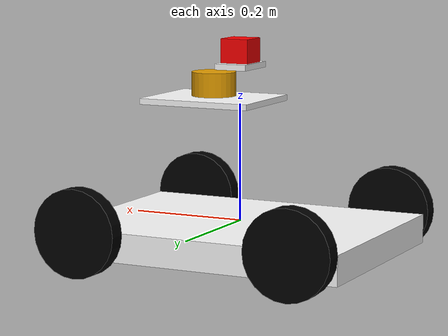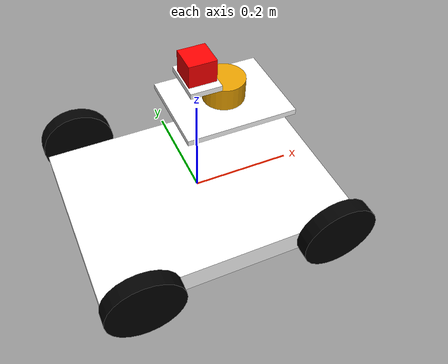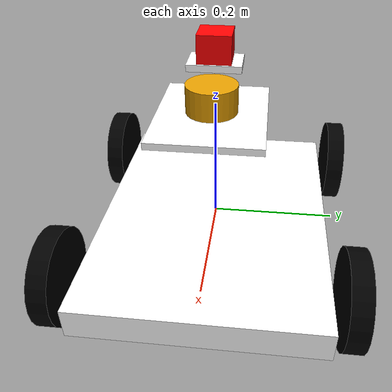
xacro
<?xml version="1.0"?>

<robot xmlns:xacro="http://www.ros.org/wiki/xacro"
 	xmlns:sensor="http://playerstage.sourceforge.net/gazebo/xmlschema/#sensor"
    	xmlns:controller="http://playerstage.sourceforge.net/gazebo/xmlschema/#controller"
    	xmlns:interface="http://playerstage.sourceforge.net/gazebo/xmlschema/#interface"
	name="robot_car">

	<xacro:property name="length_wheel" value="0.03" />
	<xacro:property name="radius_wheel" value="0.075" />
	<xacro:property name="rplidar_link" value="0.05" />
	<!--xacro:include filename="$(find myrobot)/robot_description/urdf/robot.gazebo" /-->
	<xacro:macro name="default_inertial" params="mass">
               <inertial>
                       <mass value="${mass}" />
                       <inertia ixx="1.0" ixy="0.0" ixz="0.0"
                                iyy="1.0" iyz="0.0"
                                izz="1.0" />
               </inertial>
	</xacro:macro>

	<link name="base_link">
   		<visual>
			<geometry>
      				<box size="0.52 .38 0.05"/>
     			</geometry>
			<origin rpy="0 0 0" xyz="0 0 -0.025"/>
			<material name="white">
				<color rgba="1 1 1 1"/>
			</material>
   		</visual>
		<collision>
			<geometry>
       				<box size="0.52 .38 0.05"/>
			</geometry>
		</collision>
		<xacro:default_inertial mass="5"/>
 	</link>
		<gazebo reference="base_link">
			<turnGravityOff>false</turnGravityOff>
		</gazebo>

	<link name="layer1">
   		<visual>
			<geometry>
      				<box size="0.2 .16 0.01"/>
     			</geometry>
			<origin rpy="0 0 0" xyz="0 0 0.005"/>
			<material name="white">
				<color rgba="1 1 1 1"/>
			</material>
   		</visual>
		<collision>
			<geometry>
       				<box size="0.2 .16 0.01"/>
			</geometry>
		</collision>
		<xacro:default_inertial mass="2"/>
 	</link>

     	<link name="layer2">
   		<visual>
			<geometry>
      				<box size="0.056 .08 0.01"/>
     			</geometry>
			<origin rpy="0 0 0" xyz="0 0 0.005"/>
			<material name="white">
				<color rgba="1 1 1 1"/>
			</material>
   		</visual>
		<collision>
			<geometry>
       				<box size="0.056 .08 0.01"/>
			</geometry>
		</collision>
		<xacro:default_inertial mass="1"/>
 	</link>

<link name="wheel_1">
   		<visual>
     			<geometry>
       				<cylinder length="${length_wheel}" radius="${radius_wheel}"/>
     			</geometry>
			<origin rpy="0 0 0" xyz="0 0 0"/>
   			<material name="black">
				<color rgba="0 0 0 1"/>
			</material>
		</visual>
		<collision>
			<geometry>
       				<cylinder length="${length_wheel}" radius="${radius_wheel}"/>
			</geometry>
		</collision>
		<xacro:default_inertial mass="1"/>
 	</link>

 	<link name="wheel_2">
   		<visual>
     			<geometry>
       				<cylinder length="${length_wheel}" radius="${radius_wheel}"/>
     			</geometry>
			<origin rpy="0 0 0" xyz="0 0 0"/>
   			<material name="black"/>
   		</visual>
		<collision>
			<geometry>
       				<cylinder length="${length_wheel}" radius="${radius_wheel}"/>
			</geometry>
		</collision>
		<xacro:default_inertial mass="1"/>

 	</link>

 	<link name="wheel_3">
   		<visual>
     			<geometry>
       				<cylinder length="${length_wheel}" radius="${radius_wheel}"/>
     			</geometry>

			<origin rpy="0 0 0" xyz="0 0 0"/>
   			<material name="black"/>
   		</visual>
		<collision>
			<geometry>
       				<cylinder length="${length_wheel}" radius="${radius_wheel}"/>
			</geometry>
		</collision>
		<xacro:default_inertial mass="1"/>
 	</link>

 	<link name="wheel_4">
   		<visual>
     			<geometry>
       				<cylinder length="${length_wheel}" radius="${radius_wheel}"/>
     			</geometry>
			<origin rpy="0 0 0" xyz="0 0 0" />
   			<material name="black"/>
   		</visual>
		<collision>
			<geometry>
       				<cylinder length="${length_wheel}" radius="${radius_wheel}"/>
			</geometry>
		</collision>
		<xacro:default_inertial mass="1"/>

 	</link>

  <joint name="layer1" type="fixed">
    <axis xyz="0 1 0" />
    <origin xyz="0.05 0 0.2" rpy="0 0 0"/>
    <parent link="base_link"/>
    <child link="layer1"/>
  </joint>

    <joint name="layer2" type="fixed">
    <axis xyz="0 1 0" />
    <origin xyz="0.0 0 0.26" rpy="0 0 0"/>
    <parent link="base_link"/>
    <child link="layer2"/>
  </joint>

 <joint name="base_to_wheel1" type="continuous">
   <parent link="base_link"/>
   <child link="wheel_1"/>
   <origin rpy="-1.5707 0 0" xyz="0.192 0.215 0"/>
   <axis xyz="0 0 0.016" />
 </joint>

 <joint name="base_to_wheel2" type="continuous">
   <axis xyz="0 0 1" />
   <anchor xyz="0 0 0" />
   <limit effort="100" velocity="100" />
   <parent link="base_link"/>
   <child link="wheel_2"/>
   <origin rpy="-1.5707 0 0" xyz="0.192 -0.215 0"/>
</joint>

 <joint name="base_to_wheel3" type="continuous">
   <parent link="base_link"/>
   <axis xyz="0 0 1" />
   <child link="wheel_3"/>
   <origin rpy="-1.5707 0 0" xyz="-0.19 0.215 0"/>
 </joint>

 <joint name="base_to_wheel4" type="continuous">
   <parent link="base_link"/>
   <axis xyz="0 0 1" />
   <child link="wheel_4"/>
   <origin rpy="-1.5707 0 0" xyz="-0.19 -0.215 0"/>
 </joint>
 <!-- Camera joint -->
  <joint name="camera_joint" type="fixed">
    <axis xyz="0 1 0" />
    <origin xyz="0 0 0.286" rpy="0 0 0"/>
    <parent link="base_link"/>
    <child link="camera_link"/>
  </joint>

  <!-- Camera -->
  <link name="camera_link">
    <collision>
      <origin xyz="0 0 0" rpy="0 0 0"/>
      <geometry>
	<box size="0.05 0.05 0.05"/>
      </geometry>
    </collision>

    <visual>
      <origin xyz="0 0 0" rpy="0 0 0"/>
      <geometry>
	<box size="0.05 0.05 0.05"/>
      </geometry>
      <material name="red">
	<color rgba="1 0 0 1"/>
      </material>
    </visual>

    <inertial>
      <mass value="1e-5" />
      <origin xyz="0 0 0" rpy="0 0 0"/>
      <inertia ixx="1e-6" ixy="0" ixz="0" iyy="1e-6" iyz="0" izz="1e-6" />
    </inertial>
</link>

<!-- rplidar joint -->
  <joint name="rplidar_joint" type="fixed">
    <origin xyz="0.05 0 0.201" rpy="0 0 3.1415"/>
    <parent link="base_link"/>
    <child link="rplidar_link"/>
  </joint>
<!-- rplidar Laser -->
  <link name="rplidar_link">
    <collision>
      <origin xyz="0 0 0.031" rpy="0 0 0"/>
        <geometry>
	              <cylinder length="0.041" radius="0.0378"/>
        </geometry>
    </collision>
    <visual>
      <origin xyz="0 0 0.031" rpy="0 0 0"/>
        <geometry>
	              <cylinder length="0.041" radius="0.0378"/>
        </geometry>

    </visual>

    <inertial>
      <mass value="1e-5" />
      <origin xyz="0 0 0" rpy="0 0 0"/>
      <inertia ixx="1e-6" ixy="0" ixz="0" iyy="1e-6" iyz="0" izz="1e-6" />
    </inertial>
  </link>

  <!-- Drive controller -->
<gazebo>
  <plugin name="skid_steer_drive_controller" filename="libgazebo_ros_skid_steer_drive.so">
    <updateRate>30.0</updateRate>
    <robotNamespace>/</robotNamespace>
    <leftFrontJoint>base_to_wheel1</leftFrontJoint>
    <rightFrontJoint>base_to_wheel2</rightFrontJoint>
    <leftRearJoint>base_to_wheel3</leftRearJoint>
    <rightRearJoint>base_to_wheel4</rightRearJoint>
    <wheelSeparation>5</wheelSeparation>
    <wheelDiameter>0.15</wheelDiameter>
    <robotBaseFrame>base_link</robotBaseFrame>
    <odometryFrame>odom</odometryFrame>
		<odometryTopic>odom</odometryTopic>
    <torque>2</torque>
    <commandTopic>cmd_vel</commandTopic>
    <broadcastTF>1</broadcastTF>
  </plugin>
</gazebo>

</robot>
